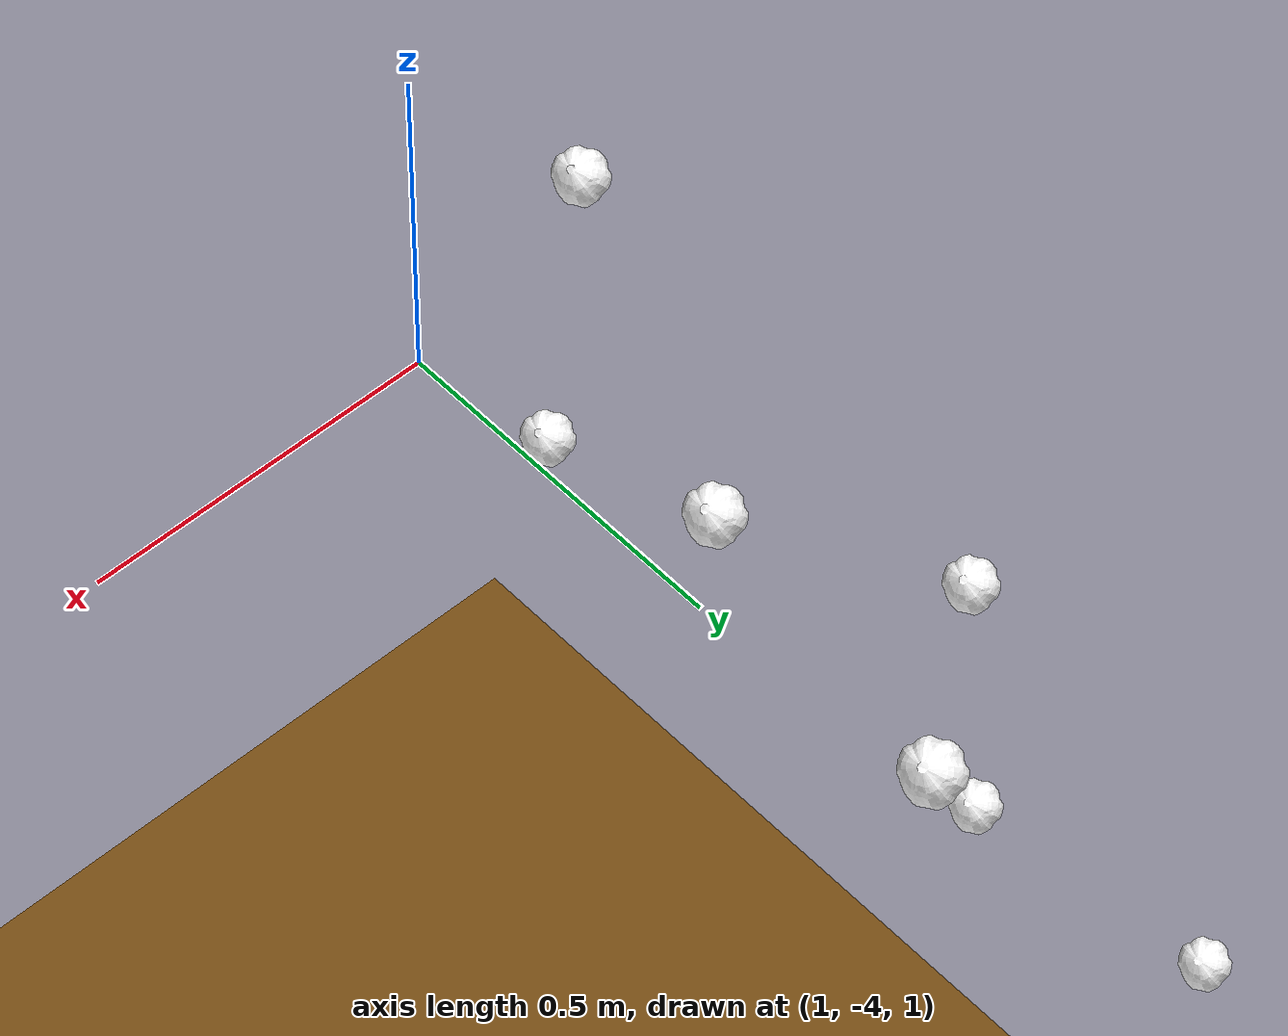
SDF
<sdf version="1.10">
 <world name="field">
  <model name="ground_plane">
   <static>true</static>
   <pose>0 0 -0.025 0 0 0</pose>
   <link name="ground_link">
    <collision name="collision"><geometry><box><size>22 14 0.05</size></box></geometry></collision>
    <visual name="visual">
     <geometry><box><size>22 14 0.05</size></box></geometry>
     <material><ambient>0.45 0.29 0.07 1</ambient><diffuse>0.45 0.29 0.07 1</diffuse></material>
    </visual>
   </link>
  </model>
  <model name="tomato_32_fruit_0">
   <static>true</static>
   <pose>1.0779066164936864 -3.3957950861477304 1.342004492794151 0 0 0</pose>
   <link name="fruit_link">
    <collision name="fruit_collision">
     <geometry><sphere><radius>0.040801119961562909</radius></sphere></geometry>
    </collision>
    <visual name="fruit_visual">
     <geometry>
      <mesh>
       <uri>model://tomato_fruit/meshes/fruit.dae</uri>
       <scale>0.081602239923125819 0.081602239923125819 0.081602239923125819</scale>
      </mesh>
     </geometry>
     <material>
      <ambient>1 1 1 1</ambient>
      <diffuse>1 1 1 1</diffuse>
      <pbr>
       <metal>
        <albedo_map>model://tomato_0/materials/textures/AG15frt1.png</albedo_map>
        <metalness>0</metalness>
        <roughness>0.4</roughness>
       </metal>
      </pbr>
     </material>
    </visual>
   </link>
  </model>
  <model name="tomato_32_fruit_1">
   <static>true</static>
   <pose>0.97768146473899042 -3.7301978623916097 1.5550530076926221 0 0 0</pose>
   <link name="fruit_link">
    <collision name="fruit_collision">
     <geometry><sphere><radius>0.037362320026178793</radius></sphere></geometry>
    </collision>
    <visual name="fruit_visual">
     <geometry>
      <mesh>
       <uri>model://tomato_fruit/meshes/fruit.dae</uri>
       <scale>0.074724640052357585 0.074724640052357585 0.074724640052357585</scale>
      </mesh>
     </geometry>
     <material>
      <ambient>1 1 1 1</ambient>
      <diffuse>1 1 1 1</diffuse>
      <pbr>
       <metal>
        <albedo_map>model://tomato_0/materials/textures/AG15frt1.png</albedo_map>
        <metalness>0</metalness>
        <roughness>0.4</roughness>
       </metal>
      </pbr>
     </material>
    </visual>
   </link>
  </model>
  <model name="tomato_32_fruit_2">
   <static>true</static>
   <pose>1.1777970955925621 -3.5634062049948381 1.4070889097326571 0 0 0</pose>
   <link name="fruit_link">
    <collision name="fruit_collision">
     <geometry><sphere><radius>0.034593090451951324</radius></sphere></geometry>
    </collision>
    <visual name="fruit_visual">
     <geometry>
      <mesh>
       <uri>model://tomato_fruit/meshes/fruit.dae</uri>
       <scale>0.069186180903902647 0.069186180903902647 0.069186180903902647</scale>
      </mesh>
     </geometry>
     <material>
      <ambient>1 1 1 1</ambient>
      <diffuse>1 1 1 1</diffuse>
      <pbr>
       <metal>
        <albedo_map>model://tomato_0/materials/textures/AG15frt1.png</albedo_map>
        <metalness>0</metalness>
        <roughness>0.4</roughness>
       </metal>
      </pbr>
     </material>
    </visual>
   </link>
  </model>
  <model name="tomato_33_fruit_0">
   <static>true</static>
   <pose>1.0189464204064955 -3.0540584732537988 1.4919984595300382 0 0 0</pose>
   <link name="fruit_link">
    <collision name="fruit_collision">
     <geometry><sphere><radius>0.03496186945793895</radius></sphere></geometry>
    </collision>
    <visual name="fruit_visual">
     <geometry>
      <mesh>
       <uri>model://tomato_fruit/meshes/fruit.dae</uri>
       <scale>0.0699237389158779 0.0699237389158779 0.0699237389158779</scale>
      </mesh>
     </geometry>
     <material>
      <ambient>1 1 1 1</ambient>
      <diffuse>1 1 1 1</diffuse>
      <pbr>
       <metal>
        <albedo_map>model://tomato_0/materials/textures/AG15frt1.png</albedo_map>
        <metalness>0</metalness>
        <roughness>0.4</roughness>
       </metal>
      </pbr>
     </material>
    </visual>
   </link>
  </model>
  <model name="tomato_33_fruit_1">
   <static>true</static>
   <pose>0.96415496174252147 -2.7137557325631234 1.0836883188785369 0 0 0</pose>
   <link name="fruit_link">
    <collision name="fruit_collision">
     <geometry><sphere><radius>0.032888764401772762</radius></sphere></geometry>
    </collision>
    <visual name="fruit_visual">
     <geometry>
      <mesh>
       <uri>model://tomato_fruit/meshes/fruit.dae</uri>
       <scale>0.065777528803545524 0.065777528803545524 0.065777528803545524</scale>
      </mesh>
     </geometry>
     <material>
      <ambient>1 1 1 1</ambient>
      <diffuse>1 1 1 1</diffuse>
      <pbr>
       <metal>
        <albedo_map>model://tomato_0/materials/textures/AG15frt1.png</albedo_map>
        <metalness>0</metalness>
        <roughness>0.4</roughness>
       </metal>
      </pbr>
     </material>
    </visual>
   </link>
  </model>
  <model name="tomato_33_fruit_3">
   <static>true</static>
   <pose>0.99594418478071556 -3.0451786431126946 1.0703682756635535 0 0 0</pose>
   <link name="fruit_link">
    <collision name="fruit_collision">
     <geometry><sphere><radius>0.034244980549124324</radius></sphere></geometry>
    </collision>
    <visual name="fruit_visual">
     <geometry>
      <mesh>
       <uri>model://tomato_fruit/meshes/fruit.dae</uri>
       <scale>0.068489961098248647 0.068489961098248647 0.068489961098248647</scale>
      </mesh>
     </geometry>
     <material>
      <ambient>1 1 1 1</ambient>
      <diffuse>1 1 1 1</diffuse>
      <pbr>
       <metal>
        <albedo_map>model://tomato_0/materials/textures/AG15frt1.png</albedo_map>
        <metalness>0</metalness>
        <roughness>0.4</roughness>
       </metal>
      </pbr>
     </material>
    </visual>
   </link>
  </model>
  <model name="tomato_33_fruit_5">
   <static>true</static>
   <pose>1.1749142855417771 -2.9466241719339035 1.4018449537384325 0 0 0</pose>
   <link name="fruit_link">
    <collision name="fruit_collision">
     <geometry><sphere><radius>0.04309079602497802</radius></sphere></geometry>
    </collision>
    <visual name="fruit_visual">
     <geometry>
      <mesh>
       <uri>model://tomato_fruit/meshes/fruit.dae</uri>
       <scale>0.086181592049956041 0.086181592049956041 0.086181592049956041</scale>
      </mesh>
     </geometry>
     <material>
      <ambient>1 1 1 1</ambient>
      <diffuse>1 1 1 1</diffuse>
      <pbr>
       <metal>
        <albedo_map>model://tomato_0/materials/textures/AG15frt1.png</albedo_map>
        <metalness>0</metalness>
        <roughness>0.4</roughness>
       </metal>
      </pbr>
     </material>
    </visual>
   </link>
  </model>
 </world>
</sdf>
